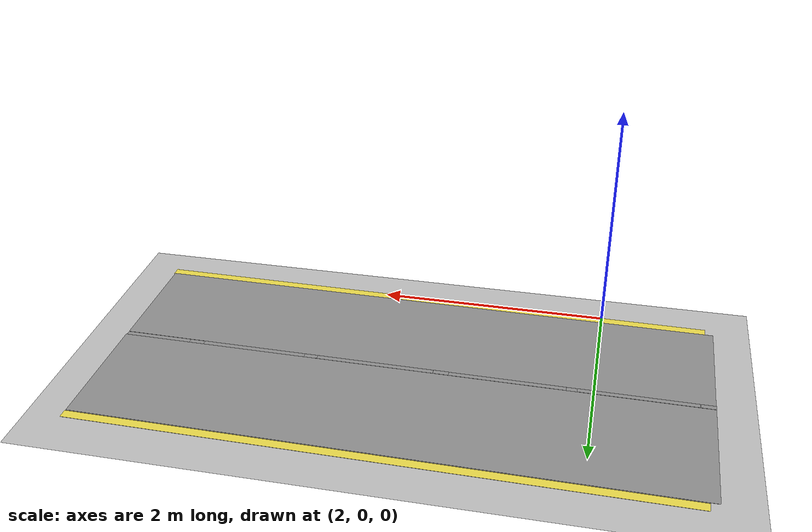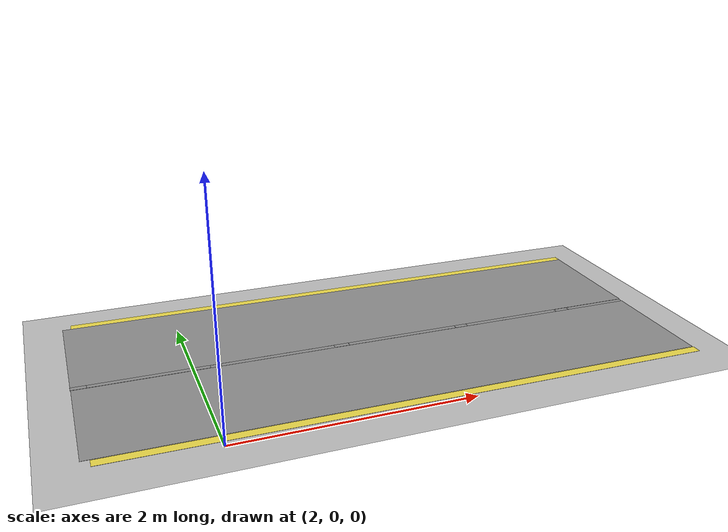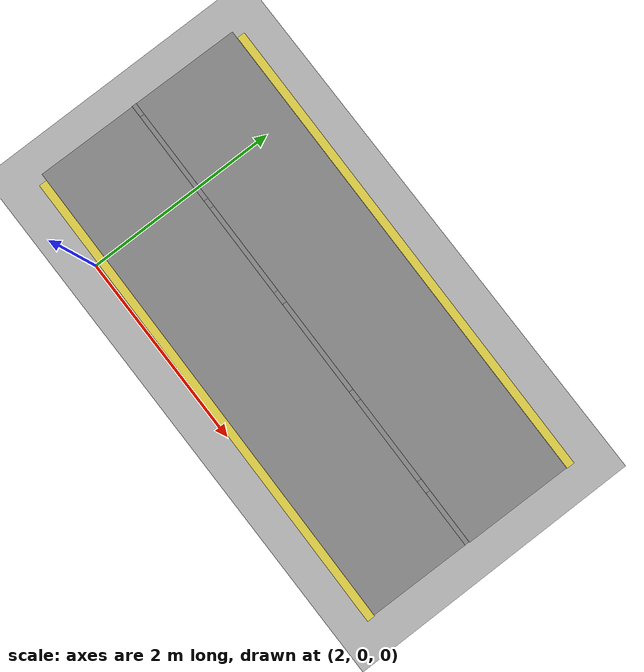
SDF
<sdf version="1.7">
 <world name="default">
  <model name="ground_plane">
   <static>1</static>
   <link name="link">
    <collision name="collision">
     <geometry><plane><normal>0 0 1</normal><size>100 100</size></plane></geometry>
     <surface><friction><ode><mu>100</mu><mu2>50</mu2></ode></friction></surface>
    </collision>
    <visual name="visual">
     <cast_shadows>0</cast_shadows>
     <geometry><plane><normal>0 0 1</normal><size>100 100</size></plane></geometry>
     <material>
      <script><uri>file://media/materials/scripts/gazebo.material</uri><name>Gazebo/Grey</name></script>
     </material>
    </visual>
   </link>
  </model>
  <model name="road_model">
   <link name="link">
    <inertial>
     <mass>10.5378</mass>
     <inertia><ixx>22.7237</ixx><ixy>0</ixy><ixz>0</ixz><iyy>1.10227</iyy><iyz>0</iyz><izz>23.826</izz></inertia>
    </inertial>
    <pose>-1.35822 -0.169763 0.026117 0 -0 0</pose>
    <visual name="visual">
     <geometry><box><size>1.12036 5.08693 0.001624</size></box></geometry>
     <material>
      <script><name>Gazebo/Grey</name><uri>file://media/materials/scripts/gazebo.material</uri></script>
      <shader type="pixel"><normal_map>__default__</normal_map></shader>
      <ambient>0 0 0 1</ambient>
      <diffuse>0 0 0 1</diffuse>
      <specular>0.176 0.204 0.212 1</specular>
      <emissive>0 0 0 1</emissive>
     </material>
    </visual>
    <collision name="collision">
     <geometry><box><size>1.12036 5.08693 0.001624</size></box></geometry>
     <surface>
      <friction>
       <ode><mu>1</mu><mu2>1</mu2><fdir1>0 0 0</fdir1><slip1>0</slip1><slip2>0</slip2></ode>
       <torsional>
        <coefficient>1</coefficient>
        <patch_radius>0</patch_radius>
        <surface_radius>0</surface_radius>
        <use_patch_radius>1</use_patch_radius>
        <ode><slip>0</slip></ode>
       </torsional>
      </friction>
      <bounce><restitution_coefficient>0</restitution_coefficient><threshold>1e+06</threshold></bounce>
      <contact>
       <collide_without_contact>0</collide_without_contact>
       <collide_without_contact_bitmask>1</collide_without_contact_bitmask>
       <collide_bitmask>1</collide_bitmask>
       <ode>
        <soft_cfm>0</soft_cfm>
        <soft_erp>0.2</soft_erp>
        <kp>1e+13</kp>
        <kd>1</kd>
        <max_vel>0.01</max_vel>
        <min_depth>0</min_depth>
       </ode>
       <bullet>
        <split_impulse>1</split_impulse>
        <split_impulse_penetration_threshold>-0.01</split_impulse_penetration_threshold>
        <soft_cfm>0</soft_cfm>
        <soft_erp>0.2</soft_erp>
        <kp>1e+13</kp>
        <kd>1</kd>
       </bullet>
      </contact>
     </surface>
    </collision>
   </link>
   <link name="link_0">
    <inertial>
     <mass>2.47245</mass>
     <inertia>
      <ixx>5.19396</ixx>
      <ixy>0</ixy>
      <ixz>0</ixz>
      <iyy>0.00136845</iyy>
      <iyz>0</iyz>
      <izz>5.19533</izz>
     </inertia>
    </inertial>
    <pose>0.33715 -0.131056 0.021512 0 -0 0</pose>
    <visual name="visual">
     <geometry><box><size>0.081481 5.02084 0.001618</size></box></geometry>
     <material>
      <lighting>1</lighting>
      <script><uri>file://media/materials/scripts/gazebo.material</uri><name>Gazebo/Grey</name></script>
      <shader type="pixel"><normal_map>__default__</normal_map></shader>
      <ambient>0.988 0.914 0.31 1</ambient>
      <diffuse>0.988 0.914 0.31 1</diffuse>
      <specular>0.988 0.914 0.31 1</specular>
      <emissive>0.929 0.831 0 1</emissive>
     </material>
    </visual>
    <collision name="collision">
     <geometry><box><size>0.081481 5.02084 0.001618</size></box></geometry>
     <surface>
      <friction>
       <ode><mu>1</mu><mu2>1</mu2><fdir1>0 0 0</fdir1><slip1>0</slip1><slip2>0</slip2></ode>
       <torsional>
        <coefficient>1</coefficient>
        <patch_radius>0</patch_radius>
        <surface_radius>0</surface_radius>
        <use_patch_radius>1</use_patch_radius>
        <ode><slip>0</slip></ode>
       </torsional>
      </friction>
      <bounce><restitution_coefficient>0</restitution_coefficient><threshold>1e+06</threshold></bounce>
      <contact>
       <collide_without_contact>0</collide_without_contact>
       <collide_without_contact_bitmask>1</collide_without_contact_bitmask>
       <collide_bitmask>1</collide_bitmask>
       <ode>
        <soft_cfm>0</soft_cfm>
        <soft_erp>0.2</soft_erp>
        <kp>1e+13</kp>
        <kd>1</kd>
        <max_vel>0.01</max_vel>
        <min_depth>0</min_depth>
       </ode>
       <bullet>
        <split_impulse>1</split_impulse>
        <split_impulse_penetration_threshold>-0.01</split_impulse_penetration_threshold>
        <soft_cfm>0</soft_cfm>
        <soft_erp>0.2</soft_erp>
        <kp>1e+13</kp>
        <kd>1</kd>
       </bullet>
      </contact>
     </surface>
    </collision>
   </link>
   <link name="link_0_clone">
    <inertial>
     <mass>2.47245</mass>
     <inertia>
      <ixx>5.19396</ixx>
      <ixy>0</ixy>
      <ixz>0</ixz>
      <iyy>0.00136845</iyy>
      <iyz>0</iyz>
      <izz>5.19533</izz>
     </inertia>
    </inertial>
    <pose>-1.9626 -0.129616 0.021512 0 -0 0</pose>
    <visual name="visual">
     <geometry><box><size>0.081481 5.02084 0.001618</size></box></geometry>
     <material>
      <lighting>1</lighting>
      <script><uri>file://media/materials/scripts/gazebo.material</uri><name>Gazebo/Grey</name></script>
      <shader type="pixel"><normal_map>__default__</normal_map></shader>
      <ambient>0.988 0.914 0.31 1</ambient>
      <diffuse>0.988 0.914 0.31 1</diffuse>
      <specular>0.988 0.914 0.31 1</specular>
      <emissive>0.929 0.831 0 1</emissive>
     </material>
    </visual>
    <collision name="collision">
     <geometry><box><size>0.081481 5.02084 0.001618</size></box></geometry>
     <surface>
      <friction>
       <ode><mu>1</mu><mu2>1</mu2><fdir1>0 0 0</fdir1><slip1>0</slip1><slip2>0</slip2></ode>
       <torsional>
        <coefficient>1</coefficient>
        <patch_radius>0</patch_radius>
        <surface_radius>0</surface_radius>
        <use_patch_radius>1</use_patch_radius>
        <ode><slip>0</slip></ode>
       </torsional>
      </friction>
      <bounce><restitution_coefficient>0</restitution_coefficient><threshold>1e+06</threshold></bounce>
      <contact>
       <collide_without_contact>0</collide_without_contact>
       <collide_without_contact_bitmask>1</collide_without_contact_bitmask>
       <collide_bitmask>1</collide_bitmask>
       <ode>
        <soft_cfm>0</soft_cfm>
        <soft_erp>0.2</soft_erp>
        <kp>1e+13</kp>
        <kd>1</kd>
        <max_vel>0.01</max_vel>
        <min_depth>0</min_depth>
       </ode>
       <bullet>
        <split_impulse>1</split_impulse>
        <split_impulse_penetration_threshold>-0.01</split_impulse_penetration_threshold>
        <soft_cfm>0</soft_cfm>
        <soft_erp>0.2</soft_erp>
        <kp>1e+13</kp>
        <kd>1</kd>
       </bullet>
      </contact>
     </surface>
    </collision>
   </link>
   <link name="link_0_clone_0_clone_2">
    <inertial>
     <mass>2.26743</mass>
     <inertia>
      <ixx>0.00299384</ixx>
      <ixy>0</ixy>
      <ixz>0</ixz>
      <iyy>0.00040977</iyy>
      <iyz>0</iyz>
      <izz>0.00340262</izz>
     </inertia>
    </inertial>
    <pose>-0.775336 -2.65231 0.027276 0 -0 0</pose>
    <visual name="visual">
     <geometry><box><size>0.04654 0.125864 0.001618</size></box></geometry>
     <material>
      <lighting>1</lighting>
      <script><uri>file://media/materials/scripts/gazebo.material</uri><name>Gazebo/Grey</name></script>
      <shader type="pixel"><normal_map>__default__</normal_map></shader>
      <ambient>0 0 0 1</ambient>
      <diffuse>0 0 0 1</diffuse>
      <specular>0.18 0.204 0.212 1</specular>
      <emissive>0 0 0 1</emissive>
     </material>
    </visual>
    <collision name="collision">
     <geometry><box><size>0.04654 0.125864 0.001618</size></box></geometry>
     <surface>
      <friction>
       <ode><mu>1</mu><mu2>1</mu2><fdir1>0 0 0</fdir1><slip1>0</slip1><slip2>0</slip2></ode>
       <torsional>
        <coefficient>1</coefficient>
        <patch_radius>0</patch_radius>
        <surface_radius>0</surface_radius>
        <use_patch_radius>1</use_patch_radius>
        <ode><slip>0</slip></ode>
       </torsional>
      </friction>
      <bounce><restitution_coefficient>0</restitution_coefficient><threshold>1e+06</threshold></bounce>
      <contact>
       <collide_without_contact>0</collide_without_contact>
       <collide_without_contact_bitmask>1</collide_without_contact_bitmask>
       <collide_bitmask>1</collide_bitmask>
       <ode>
        <soft_cfm>0</soft_cfm>
        <soft_erp>0.2</soft_erp>
        <kp>1e+13</kp>
        <kd>1</kd>
        <max_vel>0.01</max_vel>
        <min_depth>0</min_depth>
       </ode>
       <bullet>
        <split_impulse>1</split_impulse>
        <split_impulse_penetration_threshold>-0.01</split_impulse_penetration_threshold>
        <soft_cfm>0</soft_cfm>
        <soft_erp>0.2</soft_erp>
        <kp>1e+13</kp>
        <kd>1</kd>
       </bullet>
      </contact>
     </surface>
    </collision>
   </link>
   <link name="link_0_clone_0_clone_2_clone">
    <inertial>
     <mass>12.7415</mass>
     <inertia>
      <ixx>1.02827</ixx>
      <ixy>0</ixy>
      <ixz>0</ixz>
      <iyy>0.00221185</iyy>
      <iyz>0</iyz>
      <izz>1.03047</izz>
     </inertia>
    </inertial>
    <pose>-0.774748 -2.09462 0.027202 0 -0 0</pose>
    <visual name="visual">
     <geometry><box><size>0.045613 0.984084 0.001618</size></box></geometry>
     <material>
      <lighting>1</lighting>
      <script><uri>file://media/materials/scripts/gazebo.material</uri><name>Gazebo/Grey</name></script>
      <shader type="pixel"><normal_map>__default__</normal_map></shader>
      <ambient>0.933 0.933 0.925 1</ambient>
      <diffuse>0.933 0.933 0.925 1</diffuse>
      <specular>0.933 0.933 0.925 1</specular>
      <emissive>1 1 1 1</emissive>
     </material>
    </visual>
    <collision name="collision">
     <geometry><box><size>0.045613 0.984084 0.001618</size></box></geometry>
     <surface>
      <friction>
       <ode><mu>1</mu><mu2>1</mu2><fdir1>0 0 0</fdir1><slip1>0</slip1><slip2>0</slip2></ode>
       <torsional>
        <coefficient>1</coefficient>
        <patch_radius>0</patch_radius>
        <surface_radius>0</surface_radius>
        <use_patch_radius>1</use_patch_radius>
        <ode><slip>0</slip></ode>
       </torsional>
      </friction>
      <bounce><restitution_coefficient>0</restitution_coefficient><threshold>1e+06</threshold></bounce>
      <contact>
       <collide_without_contact>0</collide_without_contact>
       <collide_without_contact_bitmask>1</collide_without_contact_bitmask>
       <collide_bitmask>1</collide_bitmask>
       <ode>
        <soft_cfm>0</soft_cfm>
        <soft_erp>0.2</soft_erp>
        <kp>1e+13</kp>
        <kd>1</kd>
        <max_vel>0.01</max_vel>
        <min_depth>0</min_depth>
       </ode>
       <bullet>
        <split_impulse>1</split_impulse>
        <split_impulse_penetration_threshold>-0.01</split_impulse_penetration_threshold>
        <soft_cfm>0</soft_cfm>
        <soft_erp>0.2</soft_erp>
        <kp>1e+13</kp>
        <kd>1</kd>
       </bullet>
      </contact>
     </surface>
    </collision>
   </link>
   <link name="link_0_clone_0_clone_2_clone_0">
    <inertial>
     <mass>1.5847</mass>
     <inertia>
      <ixx>0.00105145</ixx>
      <ixy>0</ixy>
      <ixz>0</ixz>
      <iyy>0.00028396</iyy>
      <iyz>0</iyz>
      <izz>0.00133472</izz>
     </inertia>
    </inertial>
    <pose>-0.774451 -1.55707 0.025608 0 -0 0</pose>
    <visual name="visual">
     <geometry><box><size>0.046343 0.089215 0.001618</size></box></geometry>
     <material>
      <lighting>1</lighting>
      <script><uri>file://media/materials/scripts/gazebo.material</uri><name>Gazebo/Grey</name></script>
      <shader type="pixel"><normal_map>__default__</normal_map></shader>
      <ambient>0 0 0 1</ambient>
      <diffuse>0.008 0.008 0.008 1</diffuse>
      <specular>0.173 0.204 0.212 1</specular>
      <emissive>0.008 0.008 0.008 1</emissive>
     </material>
    </visual>
    <collision name="collision">
     <geometry><box><size>0.046343 0.089215 0.001618</size></box></geometry>
     <surface>
      <friction>
       <ode><mu>1</mu><mu2>1</mu2><fdir1>0 0 0</fdir1><slip1>0</slip1><slip2>0</slip2></ode>
       <torsional>
        <coefficient>1</coefficient>
        <patch_radius>0</patch_radius>
        <surface_radius>0</surface_radius>
        <use_patch_radius>1</use_patch_radius>
        <ode><slip>0</slip></ode>
       </torsional>
      </friction>
      <bounce><restitution_coefficient>0</restitution_coefficient><threshold>1e+06</threshold></bounce>
      <contact>
       <collide_without_contact>0</collide_without_contact>
       <collide_without_contact_bitmask>1</collide_without_contact_bitmask>
       <collide_bitmask>1</collide_bitmask>
       <ode>
        <soft_cfm>0</soft_cfm>
        <soft_erp>0.2</soft_erp>
        <kp>1e+13</kp>
        <kd>1</kd>
        <max_vel>0.01</max_vel>
        <min_depth>0</min_depth>
       </ode>
       <bullet>
        <split_impulse>1</split_impulse>
        <split_impulse_penetration_threshold>-0.01</split_impulse_penetration_threshold>
        <soft_cfm>0</soft_cfm>
        <soft_erp>0.2</soft_erp>
        <kp>1e+13</kp>
        <kd>1</kd>
       </bullet>
      </contact>
     </surface>
    </collision>
   </link>
   <link name="link_0_clone_0_clone_2_clone_1">
    <inertial>
     <mass>13.1728</mass>
     <inertia>
      <ixx>1.06451</ixx>
      <ixy>0</ixy>
      <ixz>0</ixz>
      <iyy>0.00229705</iyy>
      <iyz>0</iyz>
      <izz>1.0668</izz>
     </inertia>
    </inertial>
    <pose>-0.774174 -1.02033 0.02636 0 -0 0</pose>
    <visual name="visual">
     <geometry><box><size>0.045716 0.984748 0.001618</size></box></geometry>
     <material>
      <lighting>1</lighting>
      <script><uri>file://media/materials/scripts/gazebo.material</uri><name>Gazebo/Grey</name></script>
      <shader type="pixel"><normal_map>__default__</normal_map></shader>
      <ambient>0.933 0.933 0.925 1</ambient>
      <diffuse>0.933 0.933 0.925 1</diffuse>
      <specular>0.933 0.933 0.925 1</specular>
      <emissive>0.933 0.933 0.925 1</emissive>
     </material>
    </visual>
    <collision name="collision">
     <geometry><box><size>0.045716 0.984748 0.001618</size></box></geometry>
     <surface>
      <friction>
       <ode><mu>1</mu><mu2>1</mu2><fdir1>0 0 0</fdir1><slip1>0</slip1><slip2>0</slip2></ode>
       <torsional>
        <coefficient>1</coefficient>
        <patch_radius>0</patch_radius>
        <surface_radius>0</surface_radius>
        <use_patch_radius>1</use_patch_radius>
        <ode><slip>0</slip></ode>
       </torsional>
      </friction>
      <bounce><restitution_coefficient>0</restitution_coefficient><threshold>1e+06</threshold></bounce>
      <contact>
       <collide_without_contact>0</collide_without_contact>
       <collide_without_contact_bitmask>1</collide_without_contact_bitmask>
       <collide_bitmask>1</collide_bitmask>
       <ode>
        <soft_cfm>0</soft_cfm>
        <soft_erp>0.2</soft_erp>
        <kp>1e+13</kp>
        <kd>1</kd>
        <max_vel>0.01</max_vel>
        <min_depth>0</min_depth>
       </ode>
       <bullet>
        <split_impulse>1</split_impulse>
        <split_impulse_penetration_threshold>-0.01</split_impulse_penetration_threshold>
        <soft_cfm>0</soft_cfm>
        <soft_erp>0.2</soft_erp>
        <kp>1e+13</kp>
        <kd>1</kd>
       </bullet>
      </contact>
     </surface>
    </collision>
   </link>
   <link name="link_0_clone_0_clone_2_clone_2">
    <inertial>
     <mass>2.27845</mass>
     <inertia>
      <ixx>0.00325717</ixx>
      <ixy>0</ixy>
      <ixz>0</ixz>
      <iyy>0.000419046</iyy>
      <iyz>0</iyz>
      <izz>0.00367522</izz>
     </inertia>
    </inertial>
    <pose>-0.774213 -0.463139 0.027214 0 -0 0</pose>
    <visual name="visual">
     <geometry><box><size>0.046951 0.130966 0.001618</size></box></geometry>
     <material>
      <lighting>1</lighting>
      <script><uri>file://media/materials/scripts/gazebo.material</uri><name>Gazebo/Grey</name></script>
      <shader type="pixel"><normal_map>__default__</normal_map></shader>
      <ambient>0 0 0 1</ambient>
      <diffuse>0 0 0 1</diffuse>
      <specular>0.173 0.204 0.212 1</specular>
      <emissive>0.008 0.008 0.008 1</emissive>
     </material>
    </visual>
    <collision name="collision">
     <geometry><box><size>0.046951 0.130966 0.001618</size></box></geometry>
     <surface>
      <friction>
       <ode><mu>1</mu><mu2>1</mu2><fdir1>0 0 0</fdir1><slip1>0</slip1><slip2>0</slip2></ode>
       <torsional>
        <coefficient>1</coefficient>
        <patch_radius>0</patch_radius>
        <surface_radius>0</surface_radius>
        <use_patch_radius>1</use_patch_radius>
        <ode><slip>0</slip></ode>
       </torsional>
      </friction>
      <bounce><restitution_coefficient>0</restitution_coefficient><threshold>1e+06</threshold></bounce>
      <contact>
       <collide_without_contact>0</collide_without_contact>
       <collide_without_contact_bitmask>1</collide_without_contact_bitmask>
       <collide_bitmask>1</collide_bitmask>
       <ode>
        <soft_cfm>0</soft_cfm>
        <soft_erp>0.2</soft_erp>
        <kp>1e+13</kp>
        <kd>1</kd>
        <max_vel>0.01</max_vel>
        <min_depth>0</min_depth>
       </ode>
       <bullet>
        <split_impulse>1</split_impulse>
        <split_impulse_penetration_threshold>-0.01</split_impulse_penetration_threshold>
        <soft_cfm>0</soft_cfm>
        <soft_erp>0.2</soft_erp>
        <kp>1e+13</kp>
        <kd>1</kd>
       </bullet>
      </contact>
     </surface>
    </collision>
   </link>
   <link name="link_0_clone_0_clone_2_clone_3">
    <inertial>
     <mass>13.2362</mass>
     <inertia>
      <ixx>1.12778</ixx>
      <ixy>0</ixy>
      <ixz>0</ixz>
      <iyy>0.00236127</iyy>
      <iyz>0</iyz>
      <izz>1.13013</izz>
     </inertia>
    </inertial>
    <pose>-0.774623 0.109913 0.026568 0 -0 0</pose>
    <visual name="visual">
     <geometry><box><size>0.04624 1.01116 0.001618</size></box></geometry>
     <material>
      <lighting>1</lighting>
      <script><uri>file://media/materials/scripts/gazebo.material</uri><name>Gazebo/Grey</name></script>
      <shader type="pixel"><normal_map>__default__</normal_map></shader>
      <ambient>0.933 0.933 0.925 1</ambient>
      <diffuse>0.933 0.933 0.925 1</diffuse>
      <specular>0.933 0.933 0.925 1</specular>
      <emissive>0.933 0.933 0.925 1</emissive>
     </material>
    </visual>
    <collision name="collision">
     <geometry><box><size>0.04624 1.01116 0.001618</size></box></geometry>
     <surface>
      <friction>
       <ode><mu>1</mu><mu2>1</mu2><fdir1>0 0 0</fdir1><slip1>0</slip1><slip2>0</slip2></ode>
       <torsional>
        <coefficient>1</coefficient>
        <patch_radius>0</patch_radius>
        <surface_radius>0</surface_radius>
        <use_patch_radius>1</use_patch_radius>
        <ode><slip>0</slip></ode>
       </torsional>
      </friction>
      <bounce><restitution_coefficient>0</restitution_coefficient><threshold>1e+06</threshold></bounce>
      <contact>
       <collide_without_contact>0</collide_without_contact>
       <collide_without_contact_bitmask>1</collide_without_contact_bitmask>
       <collide_bitmask>1</collide_bitmask>
       <ode>
        <soft_cfm>0</soft_cfm>
        <soft_erp>0.2</soft_erp>
        <kp>1e+13</kp>
        <kd>1</kd>
        <max_vel>0.01</max_vel>
        <min_depth>0</min_depth>
       </ode>
       <bullet>
        <split_impulse>1</split_impulse>
        <split_impulse_penetration_threshold>-0.01</split_impulse_penetration_threshold>
        <soft_cfm>0</soft_cfm>
        <soft_erp>0.2</soft_erp>
        <kp>1e+13</kp>
        <kd>1</kd>
       </bullet>
      </contact>
     </surface>
    </collision>
   </link>
   <link name="link_0_clone_0_clone_2_clone_4">
    <inertial>
     <mass>2.13962</mass>
     <inertia>
      <ixx>0.00233855</ixx>
      <ixy>0</ixy>
      <ixz>0</ixz>
      <iyy>0.000388578</iyy>
      <iyz>0</iyz>
      <izz>0.00272619</izz>
     </inertia>
    </inertial>
    <pose>-0.774536 0.674336 0.026306 0 -0 0</pose>
    <visual name="visual">
     <geometry><box><size>0.046655 0.114512 0.001618</size></box></geometry>
     <material>
      <lighting>1</lighting>
      <script><uri>file://media/materials/scripts/gazebo.material</uri><name>Gazebo/Grey</name></script>
      <shader type="pixel"><normal_map>__default__</normal_map></shader>
      <ambient>0 0 0 1</ambient>
      <diffuse>0 0 0 1</diffuse>
      <specular>0.173 0.204 0.212 1</specular>
      <emissive>0 0 0 1</emissive>
     </material>
    </visual>
    <collision name="collision">
     <geometry><box><size>0.046655 0.114512 0.001618</size></box></geometry>
     <surface>
      <friction>
       <ode><mu>1</mu><mu2>1</mu2><fdir1>0 0 0</fdir1><slip1>0</slip1><slip2>0</slip2></ode>
       <torsional>
        <coefficient>1</coefficient>
        <patch_radius>0</patch_radius>
        <surface_radius>0</surface_radius>
        <use_patch_radius>1</use_patch_radius>
        <ode><slip>0</slip></ode>
       </torsional>
      </friction>
      <bounce><restitution_coefficient>0</restitution_coefficient><threshold>1e+06</threshold></bounce>
      <contact>
       <collide_without_contact>0</collide_without_contact>
       <collide_without_contact_bitmask>1</collide_without_contact_bitmask>
       <collide_bitmask>1</collide_bitmask>
       <ode>
        <soft_cfm>0</soft_cfm>
        <soft_erp>0.2</soft_erp>
        <kp>1e+13</kp>
        <kd>1</kd>
        <max_vel>0.01</max_vel>
        <min_depth>0</min_depth>
       </ode>
       <bullet>
        <split_impulse>1</split_impulse>
        <split_impulse_penetration_threshold>-0.01</split_impulse_penetration_threshold>
        <soft_cfm>0</soft_cfm>
        <soft_erp>0.2</soft_erp>
        <kp>1e+13</kp>
        <kd>1</kd>
       </bullet>
      </contact>
     </surface>
    </collision>
   </link>
   <link name="link_0_clone_0_clone_2_clone_5">
    <inertial>
     <mass>10.5995</mass>
     <inertia>
      <ixx>0.738857</ixx>
      <ixy>0</ixy>
      <ixz>0</ixz>
      <iyy>0.00203771</iyy>
      <iyz>0</iyz>
      <izz>0.74089</izz>
     </inertia>
    </inertial>
    <pose>-0.774959 1.18933 0.026025 0 -0 0</pose>
    <visual name="visual">
     <geometry><box><size>0.048003 0.914591 0.001618</size></box></geometry>
     <material>
      <lighting>1</lighting>
      <script><uri>file://media/materials/scripts/gazebo.material</uri><name>Gazebo/Grey</name></script>
      <shader type="pixel"><normal_map>__default__</normal_map></shader>
      <ambient>0.933 0.933 0.925 1</ambient>
      <diffuse>0.933 0.933 0.925 1</diffuse>
      <specular>0.933 0.933 0.925 1</specular>
      <emissive>0.933 0.933 0.925 1</emissive>
     </material>
    </visual>
    <collision name="collision">
     <geometry><box><size>0.048003 0.914591 0.001618</size></box></geometry>
     <surface>
      <friction>
       <ode><mu>1</mu><mu2>1</mu2><fdir1>0 0 0</fdir1><slip1>0</slip1><slip2>0</slip2></ode>
       <torsional>
        <coefficient>1</coefficient>
        <patch_radius>0</patch_radius>
        <surface_radius>0</surface_radius>
        <use_patch_radius>1</use_patch_radius>
        <ode><slip>0</slip></ode>
       </torsional>
      </friction>
      <bounce><restitution_coefficient>0</restitution_coefficient><threshold>1e+06</threshold></bounce>
      <contact>
       <collide_without_contact>0</collide_without_contact>
       <collide_without_contact_bitmask>1</collide_without_contact_bitmask>
       <collide_bitmask>1</collide_bitmask>
       <ode>
        <soft_cfm>0</soft_cfm>
        <soft_erp>0.2</soft_erp>
        <kp>1e+13</kp>
        <kd>1</kd>
        <max_vel>0.01</max_vel>
        <min_depth>0</min_depth>
       </ode>
       <bullet>
        <split_impulse>1</split_impulse>
        <split_impulse_penetration_threshold>-0.01</split_impulse_penetration_threshold>
        <soft_cfm>0</soft_cfm>
        <soft_erp>0.2</soft_erp>
        <kp>1e+13</kp>
        <kd>1</kd>
       </bullet>
      </contact>
     </surface>
    </collision>
   </link>
   <link name="link_0_clone_0_clone_2_clone_6">
    <inertial>
     <mass>2.3109</mass>
     <inertia>
      <ixx>0.00335196</ixx>
      <ixy>0</ixy>
      <ixz>0</ixz>
      <iyy>0.000416262</iyy>
      <iyz>0</iyz>
      <izz>0.00376721</izz>
     </inertia>
    </inertial>
    <pose>-0.774256 1.71332 0.024517 0 -0 0</pose>
    <visual name="visual">
     <geometry><box><size>0.046464 0.131922 0.001618</size></box></geometry>
     <material>
      <lighting>1</lighting>
      <script><uri>file://media/materials/scripts/gazebo.material</uri><name>Gazebo/Grey</name></script>
      <shader type="pixel"><normal_map>__default__</normal_map></shader>
      <ambient>0 0 0 1</ambient>
      <diffuse>0 0 0 1</diffuse>
      <specular>0.173 0.204 0.212 1</specular>
      <emissive>0.008 0.008 0.008 1</emissive>
     </material>
    </visual>
    <collision name="collision">
     <geometry><box><size>0.046464 0.131922 0.001618</size></box></geometry>
     <surface>
      <friction>
       <ode><mu>1</mu><mu2>1</mu2><fdir1>0 0 0</fdir1><slip1>0</slip1><slip2>0</slip2></ode>
       <torsional>
        <coefficient>1</coefficient>
        <patch_radius>0</patch_radius>
        <surface_radius>0</surface_radius>
        <use_patch_radius>1</use_patch_radius>
        <ode><slip>0</slip></ode>
       </torsional>
      </friction>
      <bounce><restitution_coefficient>0</restitution_coefficient><threshold>1e+06</threshold></bounce>
      <contact>
       <collide_without_contact>0</collide_without_contact>
       <collide_without_contact_bitmask>1</collide_without_contact_bitmask>
       <collide_bitmask>1</collide_bitmask>
       <ode>
        <soft_cfm>0</soft_cfm>
        <soft_erp>0.2</soft_erp>
        <kp>1e+13</kp>
        <kd>1</kd>
        <max_vel>0.01</max_vel>
        <min_depth>0</min_depth>
       </ode>
       <bullet>
        <split_impulse>1</split_impulse>
        <split_impulse_penetration_threshold>-0.01</split_impulse_penetration_threshold>
        <soft_cfm>0</soft_cfm>
        <soft_erp>0.2</soft_erp>
        <kp>1e+13</kp>
        <kd>1</kd>
       </bullet>
      </contact>
     </surface>
    </collision>
   </link>
   <link name="link_0_clone_0_clone_2_clone_7">
    <inertial>
     <mass>8.541</mass>
     <inertia>
      <ixx>0.24544</ixx>
      <ixy>0</ixy>
      <ixz>0</ixz>
      <iyy>0.00158449</iyy>
      <iyz>0</iyz>
      <izz>0.247021</izz>
     </inertia>
    </inertial>
    <pose>-0.773905 2.07339 0.024407 0 -0 0</pose>
    <visual name="visual">
     <geometry><box><size>0.047155 0.587229 0.001618</size></box></geometry>
     <material>
      <lighting>1</lighting>
      <script><uri>file://media/materials/scripts/gazebo.material</uri><name>Gazebo/Grey</name></script>
      <shader type="pixel"><normal_map>__default__</normal_map></shader>
      <ambient>0.933 0.933 0.925 1</ambient>
      <diffuse>0.933 0.933 0.925 1</diffuse>
      <specular>0.933 0.933 0.925 1</specular>
      <emissive>0.933 0.933 0.925 1</emissive>
     </material>
    </visual>
    <collision name="collision">
     <geometry><box><size>0.047155 0.587229 0.001618</size></box></geometry>
     <surface>
      <friction>
       <ode><mu>1</mu><mu2>1</mu2><fdir1>0 0 0</fdir1><slip1>0</slip1><slip2>0</slip2></ode>
       <torsional>
        <coefficient>1</coefficient>
        <patch_radius>0</patch_radius>
        <surface_radius>0</surface_radius>
        <use_patch_radius>1</use_patch_radius>
        <ode><slip>0</slip></ode>
       </torsional>
      </friction>
      <bounce><restitution_coefficient>0</restitution_coefficient><threshold>1e+06</threshold></bounce>
      <contact>
       <collide_without_contact>0</collide_without_contact>
       <collide_without_contact_bitmask>1</collide_without_contact_bitmask>
       <collide_bitmask>1</collide_bitmask>
       <ode>
        <soft_cfm>0</soft_cfm>
        <soft_erp>0.2</soft_erp>
        <kp>1e+13</kp>
        <kd>1</kd>
        <max_vel>0.01</max_vel>
        <min_depth>0</min_depth>
       </ode>
       <bullet>
        <split_impulse>1</split_impulse>
        <split_impulse_penetration_threshold>-0.01</split_impulse_penetration_threshold>
        <soft_cfm>0</soft_cfm>
        <soft_erp>0.2</soft_erp>
        <kp>1e+13</kp>
        <kd>1</kd>
       </bullet>
      </contact>
     </surface>
    </collision>
   </link>
   <link name="link_clone">
    <inertial>
     <mass>10.3664</mass>
     <inertia><ixx>22.2817</ixx><ixy>0</ixy><ixz>0</ixz><iyy>0.945918</iyy><iyz>0</iyz><izz>23.2276</izz></inertia>
    </inertial>
    <pose>-0.227846 -0.171563 0.025826 0 -0 0</pose>
    <visual name="visual">
     <geometry><box><size>1.04641 5.07868 0.001624</size></box></geometry>
     <material>
      <script><name>Gazebo/Grey</name><uri>file://media/materials/scripts/gazebo.material</uri></script>
      <shader type="pixel"><normal_map>__default__</normal_map></shader>
      <ambient>0 0 0 1</ambient>
      <diffuse>0 0 0 1</diffuse>
      <specular>0.176 0.204 0.212 1</specular>
      <emissive>0 0 0 1</emissive>
     </material>
    </visual>
    <collision name="collision">
     <geometry><box><size>1.04641 5.07868 0.001624</size></box></geometry>
     <surface>
      <friction>
       <ode><mu>1</mu><mu2>1</mu2><fdir1>0 0 0</fdir1><slip1>0</slip1><slip2>0</slip2></ode>
       <torsional>
        <coefficient>1</coefficient>
        <patch_radius>0</patch_radius>
        <surface_radius>0</surface_radius>
        <use_patch_radius>1</use_patch_radius>
        <ode><slip>0</slip></ode>
       </torsional>
      </friction>
      <bounce><restitution_coefficient>0</restitution_coefficient><threshold>1e+06</threshold></bounce>
      <contact>
       <collide_without_contact>0</collide_without_contact>
       <collide_without_contact_bitmask>1</collide_without_contact_bitmask>
       <collide_bitmask>1</collide_bitmask>
       <ode>
        <soft_cfm>0</soft_cfm>
        <soft_erp>0.2</soft_erp>
        <kp>1e+13</kp>
        <kd>1</kd>
        <max_vel>0.01</max_vel>
        <min_depth>0</min_depth>
       </ode>
       <bullet>
        <split_impulse>1</split_impulse>
        <split_impulse_penetration_threshold>-0.01</split_impulse_penetration_threshold>
        <soft_cfm>0</soft_cfm>
        <soft_erp>0.2</soft_erp>
        <kp>1e+13</kp>
        <kd>1</kd>
       </bullet>
      </contact>
     </surface>
    </collision>
   </link>
   <static>1</static>
   <pose>3.73174 0.391541 0 0 0 -1.57971</pose>
  </model>
 </world>
</sdf>
